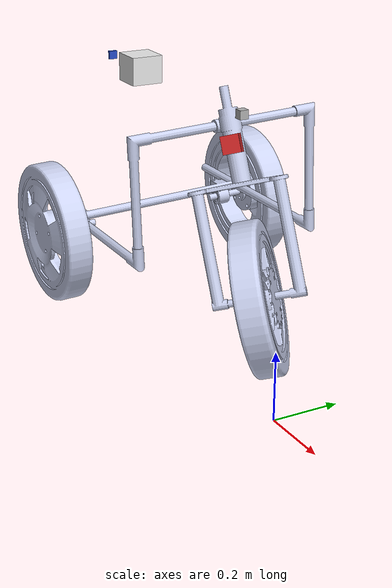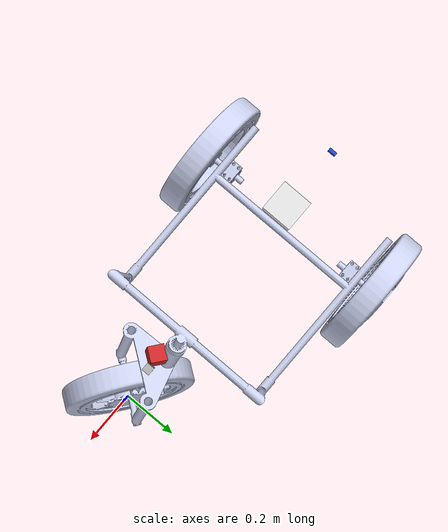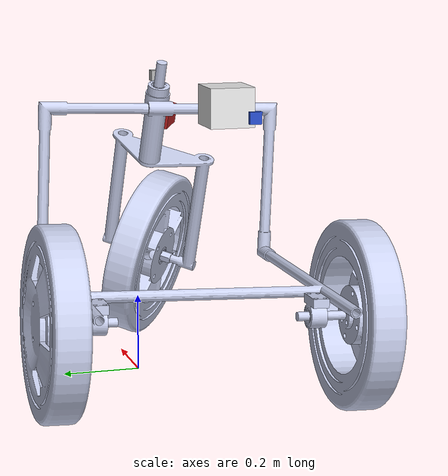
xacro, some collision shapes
<?xml version="1.0"?>

<robot
  name="chasisss"
  xmlns:sensor="http://playerstage.sourceforge.net/gazebo/xmlschema/#sensor"
xmlns:controller="http://playerstage.sourceforge.net/gazebo/xmlschema/#controller"
xmlns:interface="http://playerstage.sourceforge.net/gazebo/xmlschema/#interface"
xmlns:xacro="http://ros.org/wiki/xacro"
>

<xacro:include filename="$(find eklavya5_description)/sensors/imu.urdf.xacro" />
<xacro:include filename="$(find eklavya5_description)/sensors/gps.urdf.xacro" />
 <property name="M_PI" value="3.1415926535897931" />

  <link
    name = "base_link">
  </link>
  <link
    name="Chassis">
    <inertial>
      <origin
        xyz="0.51815 0.2035 0.46592"
        rpy="0 0 0" />
      <mass
        value="1.3372" />
      <inertia
        ixx="0.11623"
        ixy="-0.003745"
        ixz="-0.038661"
        iyy="0.10504"
        iyz="-0.010842"
        izz="0.086997" />
    </inertial>
    <visual>
      <origin
        xyz="0 0 0"
        rpy="0 0 0" />
      <geometry>
        <mesh
          filename="package://eklavya5_description/meshes/Chassis.STL" />
      </geometry>
      <material
        name="">
        <color
          rgba="0.79216 0.81961 0.93333 1" />
      </material>
    </visual>
    <collision>
      <origin
        xyz="0 0 0"
        rpy="0 0 0" />
      <geometry>
        <mesh
          filename="package://eklavya5_description/meshes/Chassis.STL" />
      </geometry>
    </collision>
  </link>
  <joint
    name="base_link-Chassis"
    type="fixed">
    <origin
      xyz="0 0 0"
      rpy="0 -1.25 -1.57" />
    <parent
      link="base_link" />
    <child
      link="Chassis" />
  </joint>
  <link
    name="Steering">
    <inertial>
      <origin
        xyz="0.074275 -0.0014324 0.24555"
        rpy="0 0 0" />
      <mass
        value="0.50841" />
      <inertia
        ixx="0.012612"
        ixy="-8.93E-06"
        ixz="-0.00091193"
        iyy="0.0089584"
        iyz="0.00011487"
        izz="0.0042882" />
    </inertial>
    <visual>
      <origin
        xyz="0 0 0"
        rpy="0 0 0" />
      <geometry>
        <mesh
          filename="package://eklavya5_description/meshes/Steering.STL" />
      </geometry>
      <material
        name="">
        <color
          rgba="0.79216 0.81961 0.93333 1" />
      </material>
    </visual>
    <collision>
      <origin
        xyz="0 0 0"
        rpy="0 0 0" />
      <geometry>
        <mesh
          filename="package://eklavya5_description/meshes/Steering.STL" />
      </geometry>
    </collision>
  </link>
  <joint
    name="Chassis-Steering"
    type="revolute">
    <limit effort="1000.0" lower="0.0" upper="6.28" velocity="0.5"/>
    <origin
      xyz="0.20345 -0.10209 0.11102"
      rpy="1.2673 0.51864 1.0548" />
    <parent
      link="Chassis" />
    <child
      link="Steering" />
    <axis
      xyz="0 0 -1" />
    <limit
      effort="0"
      velocity="0" />
  </joint>
  <link
    name="Front Wheel">
    <inertial>
      <origin
        xyz="8.9869E-09 -1.0254E-08 -0.037497"
        rpy="0 0 0" />
      <mass
        value="7.4055" />
      <inertia
        ixx="0.096133"
        ixy="3.1994E-09"
        ixz="9.2164E-10"
        iyy="0.096133"
        iyz="-1.1006E-09"
        izz="0.18557" />
    </inertial>
    <visual>
      <origin
        xyz="0 0 0"
        rpy="0 0 0" />
      <geometry>
        <mesh
          filename="package://eklavya5_description/meshes/Front Wheel.STL" />
      </geometry>
      <material
        name="">
        <color
          rgba="0.79216 0.81961 0.93333 1" />
      </material>
    </visual>
    <collision>
      <origin
        xyz="0 0 0"
        rpy="0 0 0" />
      <geometry>
        <mesh
          filename="package://eklavya5_description/meshes/Front Wheel.STL" />
      </geometry>
    </collision>
  </link>
  <joint
    name="Steerring Wheel"
    type="revolute">
    <limit effort="1000.0" lower="0.0" upper="0.548" velocity="0.5"/>
    <origin
      xyz="0.086603 0.038 0.087837"
      rpy="1.5708 0.78607 3.1416" />
    <parent
      link="Steering" />
    <child
      link="Front Wheel" />
    <axis
      xyz="0 0 -1" />
    <limit
      effort="0"
      velocity="0" />
  </joint>
  <link
    name="Left Wheel">
    <inertial>
      <origin
        xyz="4.0523E-15 0.057678 2.2204E-16"
        rpy="0 0 0" />
      <mass
        value="6.735" />
      <inertia
        ixx="0.094856"
        ixy="-4.3279E-17"
        ixz="1.0408E-17"
        iyy="0.18261"
        iyz="-8.5267E-17"
        izz="0.094856" />
    </inertial>
    <visual>
      <origin
        xyz="0 0 0"
        rpy="0 0 0" />
      <geometry>
        <mesh
          filename="package://eklavya5_description/meshes/Left Wheel.STL" />
      </geometry>
      <material
        name="">
        <color
          rgba="0.79216 0.81961 0.93333 1" />
      </material>
    </visual>
    <collision>
      <origin
        xyz="0 0 0"
        rpy="0 0 0" />
      <geometry>
        <mesh
          filename="package://eklavya5_description/meshes/Left Wheel.STL" />
      </geometry>
    </collision>
  </link>
  <joint
    name="LW-Chassis"
    type="revolute">
    <limit effort="1000.0" lower="0.0" upper="6.28" velocity="0.5"/>
    <origin
      xyz="0.23345 -0.80043 0.41447"
      rpy="1.4533 -0.25456 0.43831" />
    <parent
      link="Chassis" />
    <child
      link="Left Wheel" />
    <axis
      xyz="0 -1 0" />
    <limit
      effort="0"
      velocity="0" />
  </joint>
  <link
    name="Right Wheel">
    <inertial>
      <origin
        xyz="-1.0103E-14 1.8874E-15 0.073368"
        rpy="0 0 0" />
      <mass
        value="6.735" />
      <inertia
        ixx="0.094856"
        ixy="-5.2042E-18"
        ixz="-4.9061E-17"
        iyy="0.094856"
        iyz="1.6034E-17"
        izz="0.18261" />
    </inertial>
    <visual>
      <origin
        xyz="0 0 0"
        rpy="0 0 0" />
      <geometry>
        <mesh
          filename="package://eklavya5_description/meshes/Right Wheel.STL" />
      </geometry>
      <material
        name="">
        <color
          rgba="0.79216 0.81961 0.93333 1" />
      </material>
    </visual>
    <collision>
      <origin
        xyz="0 0 0"
        rpy="0 0 0" />
      <geometry>
        <mesh
          filename="package://eklavya5_description/meshes/Right Wheel.STL" />
      </geometry>
    </collision>
  </link>
  <joint
    name="RW-Chassis"
    type="revolute">
    <limit effort="1000.0" lower="0.0" upper="6.28" velocity="0.5"/>
    <origin
      xyz="0.384 -0.80043 -0.10941"
      rpy="-3.0808 -0.27332 -0.22183" />
    <parent
      link="Chassis" />
    <child
      link="Right Wheel" />
    <axis
      xyz="0 0 1" />
    <limit
      effort="0"
      velocity="0" />
  </joint>

  <joint name="camera_joint" type="fixed">
    <axis xyz="0 1 0" />
    <origin xyz="0.05 0 0.5" rpy="0 0 0"/>
    <parent link="Steering"/>
    <child link="camera_link"/>
  </joint>

  <!-- Camera -->
  <link name="camera_link">
    <collision>
      <origin xyz="0 0 0" rpy="0 0 0"/>
      <geometry>
    <box size="0.05 0.05 0.05"/>
      </geometry>
    </collision>

    <visual>
      <origin xyz="0 0 0" rpy="0 0 0"/>
      <geometry>
<box size="0.05 0.05 0.05"/>
      </geometry>
      <material name="red"/>
    </visual>

    <inertial>
      <mass value="1e-5" />
      <origin xyz="0 0 0" rpy="0 0 0"/>
      <inertia ixx="1e-6" ixy="0" ixz="0" iyy="1e-6" iyz="0" izz="1e-6" />
    </inertial>
  </link>

  <gazebo reference="camera_link">
    <sensor type="camera" name="camera1">
      <update_rate>24.0</update_rate>
      <camera name="head">
        <horizontal_fov>1.23</horizontal_fov>
        <image>
          <width>640</width>
          <height>480</height>
          <format>R8G8B8</format>
        </image>
        <clip>
          <near>0.02</near>
          <far>300</far>
        </clip>
        <noise>
          <type>gaussian</type>
          <!-- Noise is sampled independently per pixel on each frame.
               That pixel's noise value is added to each of its color
               channels, which at that point lie in the range [0,1]. -->
          <mean>0.0</mean>
          <stddev>0.007</stddev>
        </noise>
      </camera>
      <plugin name="camera_controller" filename="libgazebo_ros_camera.so">
        <alwaysOn>true</alwaysOn>
        <updateRate>0.0</updateRate>
        <cameraName>eklavya</cameraName>
        <imageTopicName>image_raw</imageTopicName>
        <cameraInfoTopicName>camera_info</cameraInfoTopicName>
        <frameName>camera_link</frameName>
        <hackBaseline>0.07</hackBaseline>
        <distortionK1>0.0</distortionK1>
        <distortionK2>0.0</distortionK2>
        <distortionK3>0.0</distortionK3>
        <distortionT1>0.0</distortionT1>
        <distortionT2>0.0</distortionT2>
      </plugin>
    </sensor>
  </gazebo>

<!-- Hokuyo Laser-->
<joint name="hokuyo_joint" type="fixed">
    <axis xyz="0 1 0" />
    <origin xyz="-0.2 0 0.8" rpy="0 0 0"/>
    <parent link="base_link"/>
    <child link="hokuyo_link"/>
  </joint>

  <link name="hokuyo_link">
    <collision>
      <origin xyz="0 0 0" rpy="0 0 0"/>
      <geometry>
    <box size="0.025 0.025 0.025"/>
      </geometry>
    </collision>

    <visual>
      <origin xyz="0 0 0" rpy="0 0 0"/>
      <geometry>
        <mesh filename="package://eklavya5_description/meshes/hokuyo.dae"/>
      </geometry>
    </visual>

    <inertial>
      <mass value="1e-5" />
      <origin xyz="0 0 0" rpy="0 0 0"/>
      <inertia ixx="1e-6" ixy="0" ixz="0" iyy="1e-6" iyz="0" izz="1e-6" />
    </inertial>
  </link>
  <!-- hokuyo -->
  <gazebo reference="hokuyo_link">
    <sensor type="ray" name="head_hokuyo_sensor">
      <pose>0 0 0 0 0 0</pose>
      <visualize>true</visualize>
      <update_rate>40</update_rate>
      <ray>
        <scan>
          <horizontal>
            <samples>720</samples>
            <resolution>1</resolution>
            <min_angle>-1.570796</min_angle>
            <max_angle>1.570796</max_angle>
          </horizontal>
        </scan>
        <range>
          <min>0.1</min>
          <max>4.0</max>
          <resolution>0.01</resolution>
        </range>
        <noise>
          <type>gaussian</type>
          <mean>0.0</mean>
          <stddev>0.01</stddev>
        </noise>
      </ray>
      <plugin name="gazebo_ros_head_hokuyo_controller" filename="libgazebo_ros_laser.so">
        <topicName>eklavya/laser/scan</topicName>
        <frameName>hokuyo_link</frameName>
      </plugin>
    </sensor>
  </gazebo>

<!-- IMU-->
    <sensor_imu parent="base_link" name="imu" colour="Blue" imu_px="-1" imu_py="0.0" imu_pz="0.8" imu_or="0.0" imu_op="${-M_PI/2.0}" imu_oy="0.0" />
    <gazebo reference="imu_link">
        <material>Gazebo/Blue</material>
    </gazebo>

    <!-- GPS antenna/module -->
    <sensor_gps parent="base_link" name="gps"
          colour="White"
          gps_px="-0.8"
          gps_py="0"
          gps_pz="0.8"
          gps_or="0.0"
          gps_op="0.0"
          gps_oy="${M_PI}"
          dimX="0.16" dimY="0.16" dimZ="0.14"
          />
    <gazebo reference="gps_link">
        <material>Gazebo/White</material>
    </gazebo>

</robot>

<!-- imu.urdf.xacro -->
<robot name="sensor_imu" xmlns:xacro="http://ros.org/wiki/xacro">

  <xacro:include filename="$(find eklavya5_description)/sensors/imusensor_gazebo.urdf.xacro"/>

  <xacro:macro name="sensor_imu" params="parent name colour imu_px imu_py imu_pz imu_or imu_op imu_oy">
    <link name="${name}_link">
      <inertial>
        <mass value="0.01"/>
        <origin xyz="0 0 0" rpy="0 0 0" />
        <inertia ixx="0.000001" ixy="0" ixz="0" iyy="0.000001" iyz="0" izz="0.000001"/>
      </inertial>
      <visual>
        <origin rpy="0 0 0" xyz="0 0 0"/>
        <geometry>
          <box size="0.025 0.025 0.01"/>
        </geometry>
	<material name="${colour}" />
      </visual>
    </link>
    <joint name="${name}_joint" type="fixed">
      <parent link="${parent}"/>
      <child link="${name}_link"/>
      <origin xyz="${imu_px} ${imu_py} ${imu_pz}" rpy="${imu_or} ${imu_op} ${imu_oy}"/>
    </joint>

    <!-- IMU sensor for simulation -->
    <xacro:eklavya_sim_imusensor name="${name}" />
  </xacro:macro>

</robot>

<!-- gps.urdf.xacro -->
<robot name="sensor_gps" xmlns:xacro="http://ros.org/wiki/xacro">

  <xacro:include filename="$(find eklavya5_description)/sensors/hector_gps_gazebo.urdf.xacro"/>

  <xacro:macro name="sensor_gps" params="parent name colour gps_px gps_py gps_pz gps_or gps_op gps_oy dimX dimY dimZ">
    <link name="${name}_link">
      <inertial>
        <mass value="0.10"/>
        <origin xyz="0 0 0"/>
        <inertia ixx="0.000001" ixy="0" ixz="0" iyy="0.000001" iyz="0" izz="0.000001"/>
      </inertial>
      <visual>
	<origin xyz="0 0 0" rpy="0 0 0" />
	<geometry>
          <mesh filename="package://eklavya5_description/meshes/GPSAntennaScaledDown.dae" />
	</geometry>
	<material name="${colour}" />
      </visual>
      <collision>
        <origin rpy="0 0 0" xyz="0 0 0"/>
        <geometry>
          <box size="${dimX * 0.6} ${dimY * 0.6} ${dimZ * 0.6}"/>
        </geometry>
      </collision>
    </link>
    <joint name="${name}_joint" type="fixed">
      <parent link="${parent}"/>
      <child link="${name}_link"/>
      <origin xyz="${gps_px} ${gps_py} ${gps_pz}" rpy="${gps_or} ${gps_op} ${gps_oy}"/>
    </joint>

  <!-- gps sensor for simulation -->
  <xacro:eklavya_sim_gpssensor
      name="${name}" />
  </xacro:macro>

</robot>
